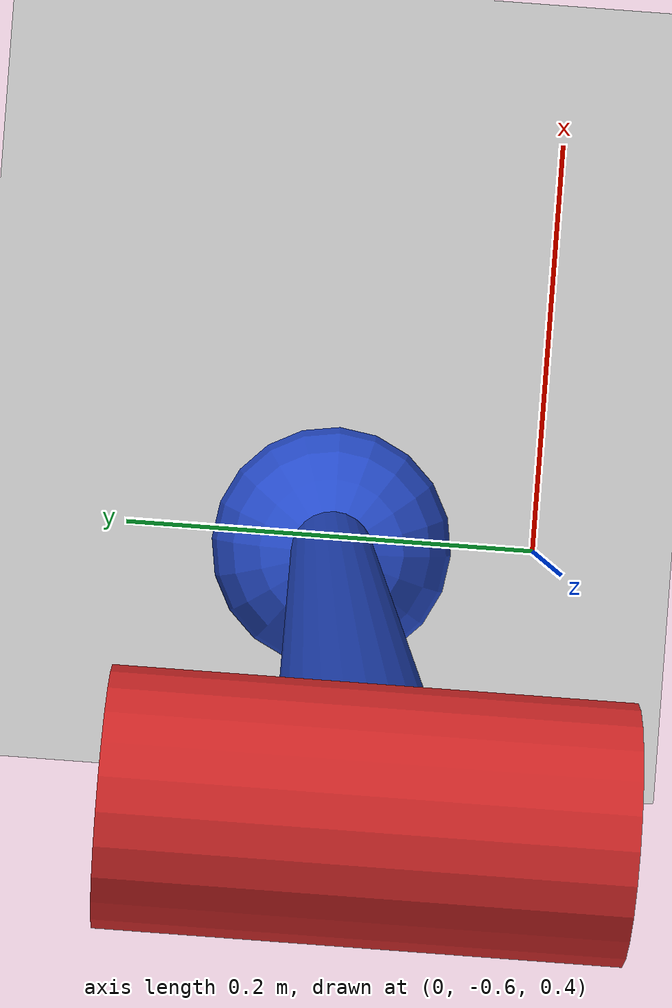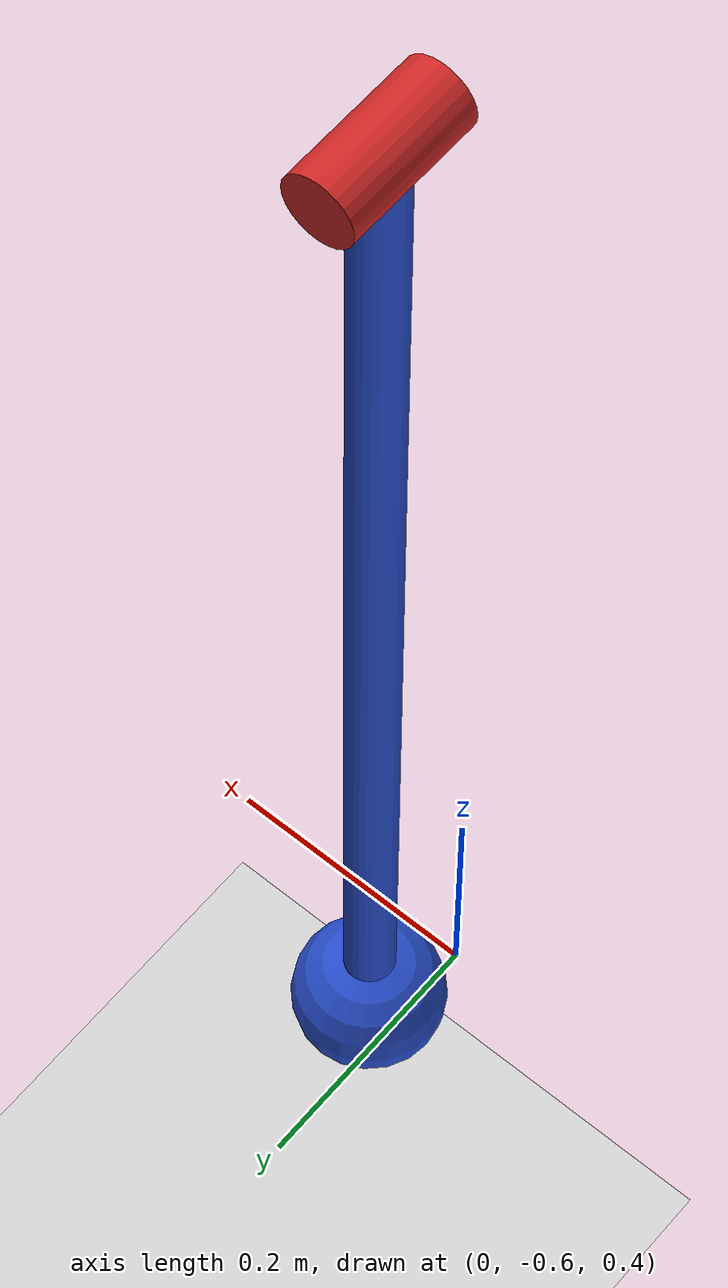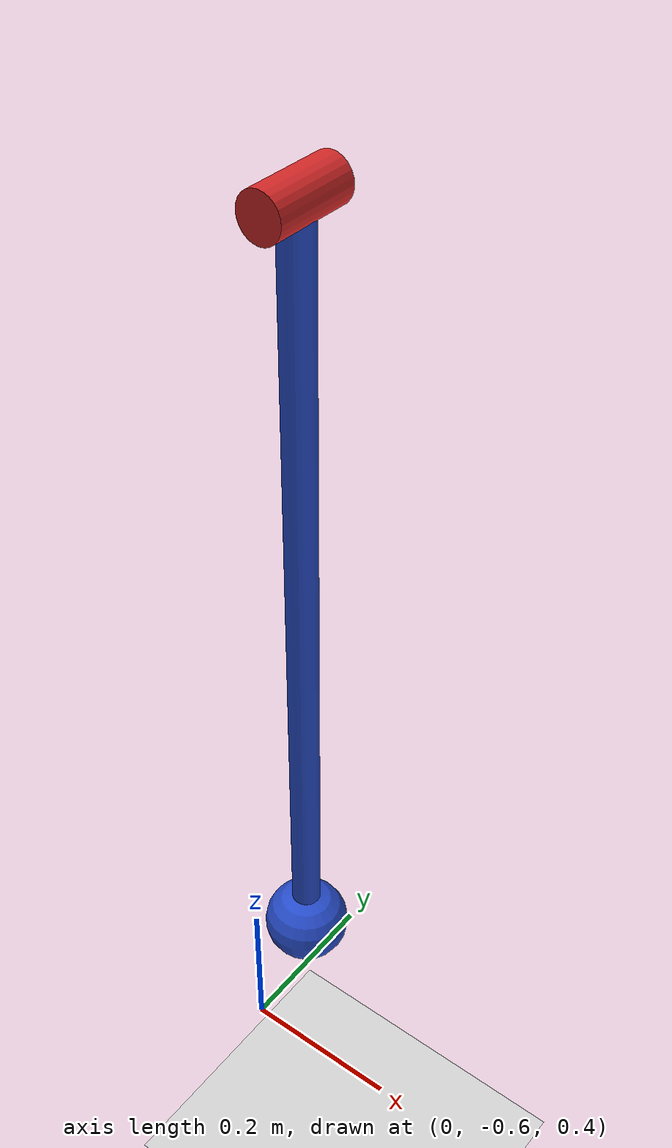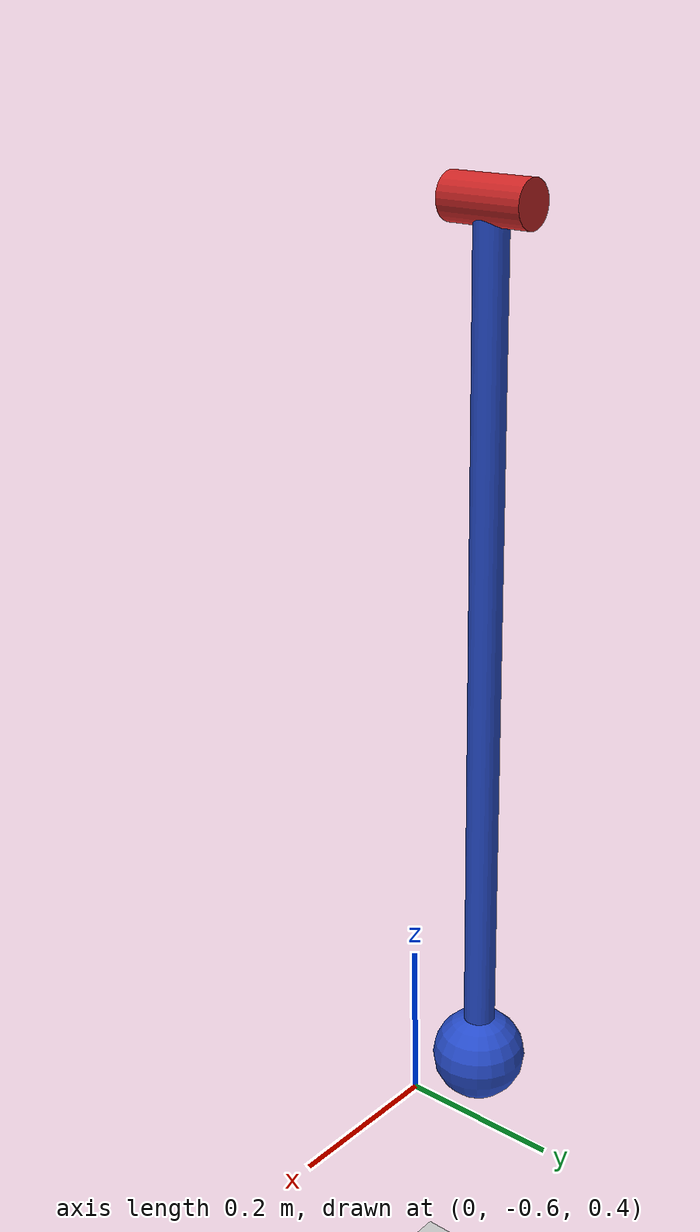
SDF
<?xml version="1.0" ?>
<sdf version="1.5">
<world name="default">
  <include>
    <uri>model://ground_plane</uri>
  </include>
  <include>
    <uri>model://sun</uri>
  </include>
  <model name="pendulum_attached_to_world">
    <pose>0 -0.5 1.5 0 0 0</pose>
    <link name="pendulum">
      <pose>0.0 0.0 0.0 0.0 0.0 0.0</pose>
      <inertial>
        <mass>1.0</mass>
        <pose>0 0 -1.0 0 0 0</pose>
        <inertia>
          <ixx>0.001</ixx>
          <ixy>0</ixy>
          <ixz>0</ixz>
          <iyy>0.001</iyy>
          <iyz>0</iyz>
          <izz>0.001</izz>
        </inertia>
      </inertial>
      <visual name="joint_axis">
        <pose>0.0 0.0 0.0 1.5707963268 0.0 0.0</pose>
        <geometry>
          <cylinder>
            <radius>0.025</radius>
            <length>0.1</length>
          </cylinder>
        </geometry>
        <material>
          <script>
            <uri>file://media/materials/scripts/gazebo.material</uri>
            <name>Gazebo/Red</name>
          </script>
        </material>
      </visual>
      <visual name="rod">
        <pose>0 0 -0.5 0.0 0.0 0.0</pose>
        <geometry>
          <cylinder>
            <radius>0.0185185185185</radius>
            <length>1</length>
          </cylinder>
        </geometry>
        <material>
          <script>
            <uri>file://media/materials/scripts/gazebo.material</uri>
            <name>Gazebo/Blue</name>
          </script>
        </material>
      </visual>
      <visual name="point_mass">
        <pose>0 0 -1.0 0 0 0</pose>
        <geometry>
          <sphere>
            <radius>0.055555555555555</radius>
          </sphere>
        </geometry>
        <material>
          <script>
            <uri>file://media/materials/scripts/gazebo.material</uri>
            <name>Gazebo/Blue</name>
          </script>
        </material>
      </visual>
    </link>
    <joint name="upper_joint" type="revolute">
      <parent>world</parent>
      <child>pendulum</child>
      <axis>
        <xyz>0.0 1.0 0.0</xyz>
        <dynamics>
          <damping>4</damping>
          <friction>0</friction>
          <spring_reference>0</spring_reference>
          <spring_stiffness>0</spring_stiffness>
        </dynamics>
      </axis>
    </joint>
  </model>
</world>
</sdf>
